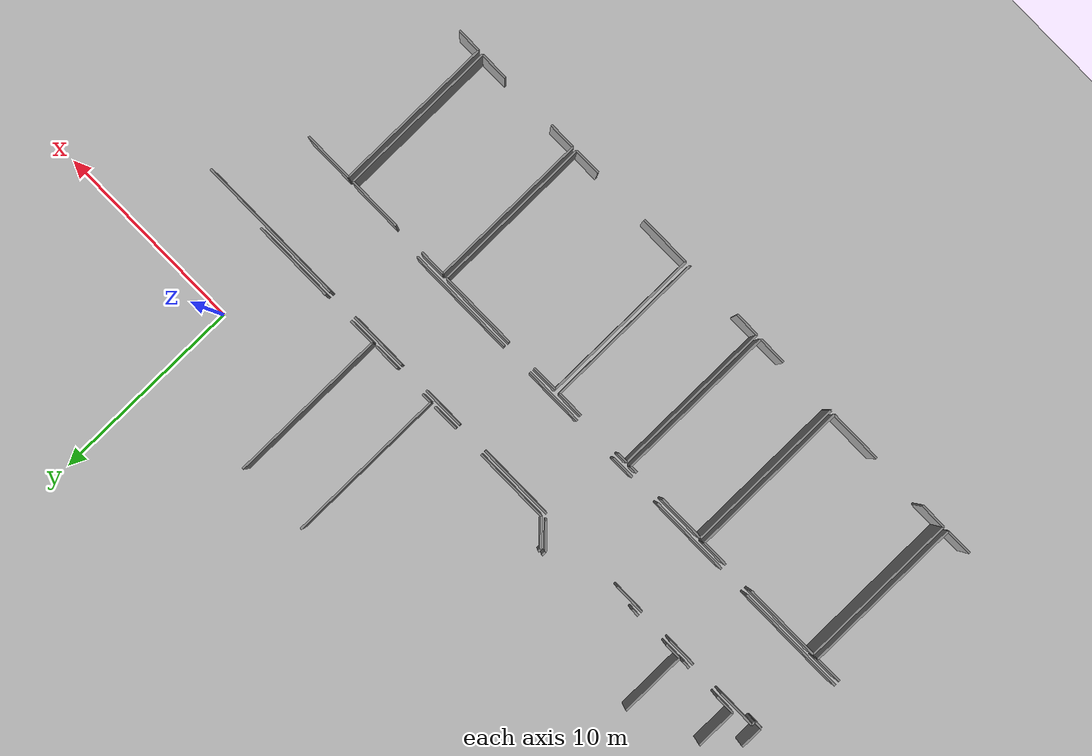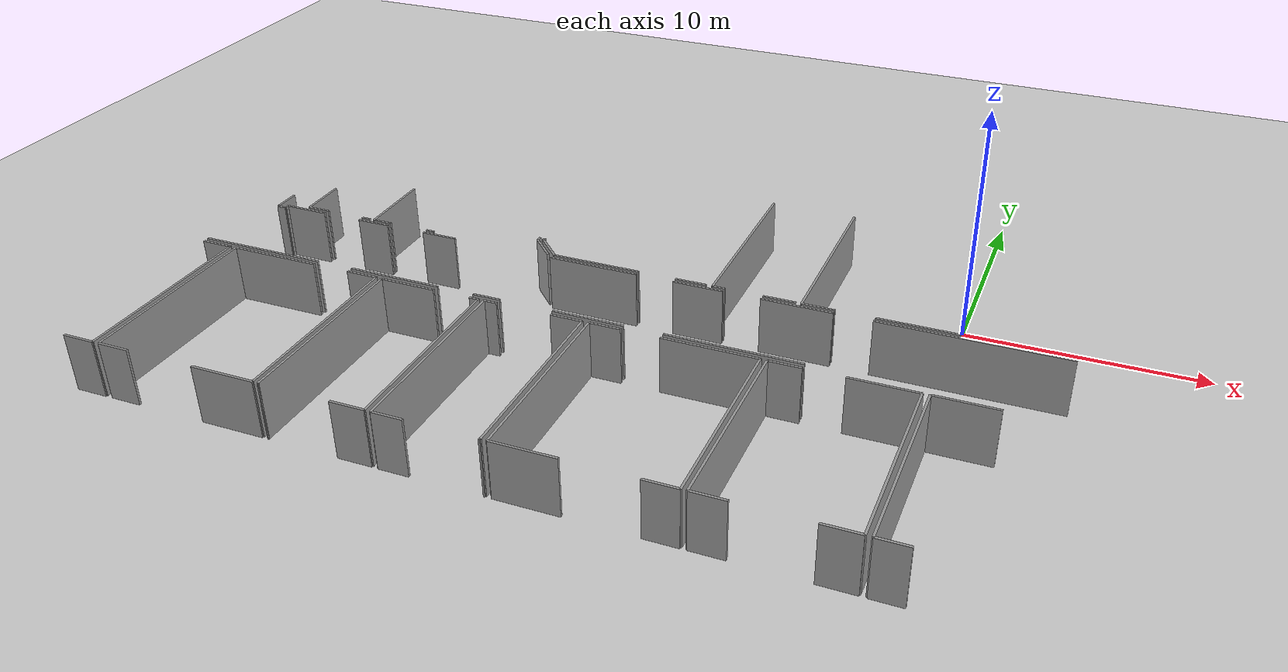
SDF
<sdf version="1.6">
 <world name="default">
  <model name="ground_plane">
   <static>1</static>
   <link name="link">
    <collision name="collision">
     <geometry><plane><normal>0 0 1</normal><size>100 100</size></plane></geometry>
     <surface><friction><ode><mu>100</mu><mu2>50</mu2></ode></friction></surface>
    </collision>
    <visual name="visual">
     <cast_shadows>0</cast_shadows>
     <geometry><plane><normal>0 0 1</normal><size>100 100</size></plane></geometry>
     <material>
      <script><uri>file://media/materials/scripts/gazebo.material</uri><name>Gazebo/Grey</name></script>
     </material>
    </visual>
   </link>
  </model>
  <model name="50041171">
   <static>1</static>
   <link name="Wall_96">
    <collision name="Wall_96_Collision">
     <geometry><box><size>5.64910788527 0.1 2.5</size></box></geometry>
     <pose>2.82455394263 0 1.25 0 0 0</pose>
    </collision>
    <visual name="Wall_96_Visual">
     <pose>2.82455394263 0 1.25 0 0 0</pose>
     <geometry><box><size>5.64910788527 0.1 2.5</size></box></geometry>
     <material>
      <script><uri>file://media/materials/scripts/gazebo.material</uri><name>Gazebo/Grey</name></script>
      <ambient>1 1 1 1</ambient>
     </material>
    </visual>
    <pose>61.1191580925 -25.0291024266 0 0 0 3.14159265359</pose>
   </link>
   <link name="Wall_97">
    <collision name="Wall_97_Collision">
     <geometry><box><size>3.0620703663 0.1 2.5</size></box></geometry>
     <pose>1.53103518315 0 1.25 0 0 0</pose>
    </collision>
    <visual name="Wall_97_Visual">
     <pose>1.53103518315 0 1.25 0 0 0</pose>
     <geometry><box><size>3.0620703663 0.1 2.5</size></box></geometry>
     <material>
      <script><uri>file://media/materials/scripts/gazebo.material</uri><name>Gazebo/Grey</name></script>
      <ambient>1 1 1 1</ambient>
     </material>
    </visual>
    <pose>53.8112436289 -25.0291024266 0 0 0 3.14159265359</pose>
   </link>
   <link name="Wall_98">
    <collision name="Wall_98_Collision">
     <geometry><box><size>1.21017854989 0.1 2.5</size></box></geometry>
     <pose>0.605089274947 0 1.25 0 0 0</pose>
    </collision>
    <visual name="Wall_98_Visual">
     <pose>0.605089274947 0 1.25 0 0 0</pose>
     <geometry><box><size>1.21017854989 0.1 2.5</size></box></geometry>
     <material>
      <script><uri>file://media/materials/scripts/gazebo.material</uri><name>Gazebo/Grey</name></script>
      <ambient>1 1 1 1</ambient>
     </material>
    </visual>
    <pose>48.4156473941 -25.0291024266 0 0 0 3.14159265359</pose>
   </link>
   <link name="Wall_99">
    <collision name="Wall_99_Collision">
     <geometry><box><size>4.12994217599 0.1 2.5</size></box></geometry>
     <pose>2.06497108799 0 1.25 0 0 0</pose>
    </collision>
    <visual name="Wall_99_Visual">
     <pose>2.06497108799 0 1.25 0 0 0</pose>
     <geometry><box><size>4.12994217599 0.1 2.5</size></box></geometry>
     <material>
      <script><uri>file://media/materials/scripts/gazebo.material</uri><name>Gazebo/Grey</name></script>
      <ambient>1 1 1 1</ambient>
     </material>
    </visual>
    <pose>45.5648155788 -25.0291024266 0 0 0 3.14159265359</pose>
   </link>
   <link name="Wall_100">
    <collision name="Wall_100_Collision">
     <geometry><box><size>5.67487797292 0.1 2.5</size></box></geometry>
     <pose>2.83743898646 0 1.25 0 0 0</pose>
    </collision>
    <visual name="Wall_100_Visual">
     <pose>2.83743898646 0 1.25 0 0 0</pose>
     <geometry><box><size>5.67487797292 0.1 2.5</size></box></geometry>
     <material>
      <script><uri>file://media/materials/scripts/gazebo.material</uri><name>Gazebo/Grey</name></script>
      <ambient>1 1 1 1</ambient>
     </material>
    </visual>
    <pose>39.7794943731 -25.0291024266 0 0 0 3.14159265359</pose>
   </link>
   <link name="Wall_107">
    <collision name="Wall_107_Collision">
     <geometry><box><size>0.410290262588 0.1 2.5</size></box></geometry>
     <pose>0.205145131294 0 1.25 0 0 0</pose>
    </collision>
    <visual name="Wall_107_Visual">
     <pose>0.205145131294 0 1.25 0 0 0</pose>
     <geometry><box><size>0.410290262588 0.1 2.5</size></box></geometry>
     <material>
      <script><uri>file://media/materials/scripts/gazebo.material</uri><name>Gazebo/Grey</name></script>
      <ambient>1 1 1 1</ambient>
     </material>
    </visual>
    <pose>35.0432569329 -21.2995487061 0 0 0 0.0</pose>
   </link>
   <link name="Wall_108">
    <collision name="Wall_108_Collision">
     <geometry><box><size>0.200321173999 0.1 2.5</size></box></geometry>
     <pose>0.100160586999 0 1.25 0 0 0</pose>
    </collision>
    <visual name="Wall_108_Visual">
     <pose>0.100160586999 0 1.25 0 0 0</pose>
     <geometry><box><size>0.200321173999 0.1 2.5</size></box></geometry>
     <material>
      <script><uri>file://media/materials/scripts/gazebo.material</uri><name>Gazebo/Grey</name></script>
      <ambient>1 1 1 1</ambient>
     </material>
    </visual>
    <pose>35.4535471954 -21.2995487061 0 0 0 1.57079632679</pose>
   </link>
   <link name="Wall_109">
    <collision name="Wall_109_Collision">
     <geometry><box><size>1.97769554482 0.1 2.5</size></box></geometry>
     <pose>0.988847772411 0 1.25 0 0 0</pose>
    </collision>
    <visual name="Wall_109_Visual">
     <pose>0.988847772411 0 1.25 0 0 0</pose>
     <geometry><box><size>1.97769554482 0.1 2.5</size></box></geometry>
     <material>
      <script><uri>file://media/materials/scripts/gazebo.material</uri><name>Gazebo/Grey</name></script>
      <ambient>1 1 1 1</ambient>
     </material>
    </visual>
    <pose>35.4535471954 -21.0992275321 0 0 0 0.0</pose>
   </link>
   <link name="Wall_110">
    <collision name="Wall_110_Collision">
     <geometry><box><size>1.48120878214 0.1 2.5</size></box></geometry>
     <pose>0.740604391071 0 1.25 0 0 0</pose>
    </collision>
    <visual name="Wall_110_Visual">
     <pose>0.740604391071 0 1.25 0 0 0</pose>
     <geometry><box><size>1.48120878214 0.1 2.5</size></box></geometry>
     <material>
      <script><uri>file://media/materials/scripts/gazebo.material</uri><name>Gazebo/Grey</name></script>
      <ambient>1 1 1 1</ambient>
     </material>
    </visual>
    <pose>39.2496207481 -21.0992275321 0 0 0 0.0</pose>
   </link>
   <link name="Wall_111">
    <collision name="Wall_111_Collision">
     <geometry><box><size>1.59342926238 0.1 2.5</size></box></geometry>
     <pose>0.796714631189 0 1.25 0 0 0</pose>
    </collision>
    <visual name="Wall_111_Visual">
     <pose>0.796714631189 0 1.25 0 0 0</pose>
     <geometry><box><size>1.59342926238 0.1 2.5</size></box></geometry>
     <material>
      <script><uri>file://media/materials/scripts/gazebo.material</uri><name>Gazebo/Grey</name></script>
      <ambient>1 1 1 1</ambient>
     </material>
    </visual>
    <pose>42.5324506338 -21.0992275321 0 0 0 0.0</pose>
   </link>
   <link name="Wall_112">
    <collision name="Wall_112_Collision">
     <geometry><box><size>3.97443302634 0.1 2.5</size></box></geometry>
     <pose>1.98721651317 0 1.25 0 0 0</pose>
    </collision>
    <visual name="Wall_112_Visual">
     <pose>1.98721651317 0 1.25 0 0 0</pose>
     <geometry><box><size>3.97443302634 0.1 2.5</size></box></geometry>
     <material>
      <script><uri>file://media/materials/scripts/gazebo.material</uri><name>Gazebo/Grey</name></script>
      <ambient>1 1 1 1</ambient>
     </material>
    </visual>
    <pose>48.7137171765 -21.0992275321 0 0 0 0.0</pose>
   </link>
   <link name="Wall_113">
    <collision name="Wall_113_Collision">
     <geometry><box><size>2.1808095362 0.1 2.5</size></box></geometry>
     <pose>1.0904047681 0 1.25 0 0 0</pose>
    </collision>
    <visual name="Wall_113_Visual">
     <pose>1.0904047681 0 1.25 0 0 0</pose>
     <geometry><box><size>2.1808095362 0.1 2.5</size></box></geometry>
     <material>
      <script><uri>file://media/materials/scripts/gazebo.material</uri><name>Gazebo/Grey</name></script>
      <ambient>1 1 1 1</ambient>
     </material>
    </visual>
    <pose>54.3148393813 -21.0992275321 0 0 0 0.0</pose>
   </link>
   <link name="Wall_114">
    <collision name="Wall_114_Collision">
     <geometry><box><size>3.02462122414 0.1 2.5</size></box></geometry>
     <pose>1.51231061207 0 1.25 0 0 0</pose>
    </collision>
    <visual name="Wall_114_Visual">
     <pose>1.51231061207 0 1.25 0 0 0</pose>
     <geometry><box><size>3.02462122414 0.1 2.5</size></box></geometry>
     <material>
      <script><uri>file://media/materials/scripts/gazebo.material</uri><name>Gazebo/Grey</name></script>
      <ambient>1 1 1 1</ambient>
     </material>
    </visual>
    <pose>58.0966949545 -21.0992275321 0 0 0 0.0</pose>
   </link>
   <link name="Wall_115">
    <collision name="Wall_115_Collision">
     <geometry><box><size>7.76288980431 0.1 2.5</size></box></geometry>
     <pose>3.88144490216 0 1.25 0 0 0</pose>
    </collision>
    <visual name="Wall_115_Visual">
     <pose>3.88144490216 0 1.25 0 0 0</pose>
     <geometry><box><size>7.76288980431 0.1 2.5</size></box></geometry>
     <material>
      <script><uri>file://media/materials/scripts/gazebo.material</uri><name>Gazebo/Grey</name></script>
      <ambient>1 1 1 1</ambient>
     </material>
    </visual>
    <pose>62.7313753991 -21.0992275321 0 0 0 0.0</pose>
   </link>
   <link name="Wall_128">
    <collision name="Wall_128_Collision">
     <geometry><box><size>1.13924106168 0.1 2.5</size></box></geometry>
     <pose>0.569620530839 0 1.25 0 0 0</pose>
    </collision>
    <visual name="Wall_128_Visual">
     <pose>0.569620530839 0 1.25 0 0 0</pose>
     <geometry><box><size>1.13924106168 0.1 2.5</size></box></geometry>
     <material>
      <script><uri>file://media/materials/scripts/gazebo.material</uri><name>Gazebo/Grey</name></script>
      <ambient>1 1 1 1</ambient>
     </material>
    </visual>
    <pose>35.0588713209 -20.1016839419 0 0 0 -1.5774822089</pose>
   </link>
   <link name="Wall_129">
    <collision name="Wall_129_Collision">
     <geometry><box><size>0.393406412055 0.1 2.5</size></box></geometry>
     <pose>0.196703206027 0 1.25 0 0 0</pose>
    </collision>
    <visual name="Wall_129_Visual">
     <pose>0.196703206027 0 1.25 0 0 0</pose>
     <geometry><box><size>0.393406412055 0.1 2.5</size></box></geometry>
     <material>
      <script><uri>file://media/materials/scripts/gazebo.material</uri><name>Gazebo/Grey</name></script>
      <ambient>1 1 1 1</ambient>
     </material>
    </visual>
    <pose>39.652802021 -20.8608224847 0 0 0 3.14159265359</pose>
   </link>
   <link name="Wall_130">
    <collision name="Wall_130_Collision">
     <geometry><box><size>1.01747415057 0.1 2.5</size></box></geometry>
     <pose>0.508737075285 0 1.25 0 0 0</pose>
    </collision>
    <visual name="Wall_130_Visual">
     <pose>0.508737075285 0 1.25 0 0 0</pose>
     <geometry><box><size>1.01747415057 0.1 2.5</size></box></geometry>
     <material>
      <script><uri>file://media/materials/scripts/gazebo.material</uri><name>Gazebo/Grey</name></script>
      <ambient>1 1 1 1</ambient>
     </material>
    </visual>
    <pose>37.4642487639 -20.8608224847 0 0 0 3.14159265359</pose>
   </link>
   <link name="Wall_131">
    <collision name="Wall_131_Collision">
     <geometry><box><size>2.0925818962 0.1 2.5</size></box></geometry>
     <pose>1.0462909481 0 1.25 0 0 0</pose>
    </collision>
    <visual name="Wall_131_Visual">
     <pose>1.0462909481 0 1.25 0 0 0</pose>
     <geometry><box><size>2.0925818962 0.1 2.5</size></box></geometry>
     <material>
      <script><uri>file://media/materials/scripts/gazebo.material</uri><name>Gazebo/Grey</name></script>
      <ambient>1 1 1 1</ambient>
     </material>
    </visual>
    <pose>36.4467746133 -20.8608224847 0 0 0 1.57079632679</pose>
   </link>
   <link name="Wall_136">
    <collision name="Wall_136_Collision">
     <geometry><box><size>0.384647121177 0.1 2.5</size></box></geometry>
     <pose>0.192323560588 0 1.25 0 0 0</pose>
    </collision>
    <visual name="Wall_136_Visual">
     <pose>0.192323560588 0 1.25 0 0 0</pose>
     <geometry><box><size>0.384647121177 0.1 2.5</size></box></geometry>
     <material>
      <script><uri>file://media/materials/scripts/gazebo.material</uri><name>Gazebo/Grey</name></script>
      <ambient>1 1 1 1</ambient>
     </material>
    </visual>
    <pose>42.9300462719 -20.8641230871 0 0 0 3.14159265359</pose>
   </link>
   <link name="Wall_137">
    <collision name="Wall_137_Collision">
     <geometry><box><size>0.861076377208 0.1 2.5</size></box></geometry>
     <pose>0.430538188604 0 1.25 0 0 0</pose>
    </collision>
    <visual name="Wall_137_Visual">
     <pose>0.430538188604 0 1.25 0 0 0</pose>
     <geometry><box><size>0.861076377208 0.1 2.5</size></box></geometry>
     <material>
      <script><uri>file://media/materials/scripts/gazebo.material</uri><name>Gazebo/Grey</name></script>
      <ambient>1 1 1 1</ambient>
     </material>
    </visual>
    <pose>40.7327337239 -20.8641230871 0 0 0 3.14159265359</pose>
   </link>
   <link name="Wall_138">
    <collision name="Wall_138_Collision">
     <geometry><box><size>3.38552939758 0.1 2.5</size></box></geometry>
     <pose>1.69276469879 0 1.25 0 0 0</pose>
    </collision>
    <visual name="Wall_138_Visual">
     <pose>1.69276469879 0 1.25 0 0 0</pose>
     <geometry><box><size>3.38552939758 0.1 2.5</size></box></geometry>
     <material>
      <script><uri>file://media/materials/scripts/gazebo.material</uri><name>Gazebo/Grey</name></script>
      <ambient>1 1 1 1</ambient>
     </material>
    </visual>
    <pose>39.8716573467 -20.8641230871 0 0 0 1.57079632679</pose>
   </link>
   <link name="Wall_146">
    <collision name="Wall_146_Collision">
     <geometry><box><size>1.44050423501 0.1 2.5</size></box></geometry>
     <pose>0.720252117505 0 1.25 0 0 0</pose>
    </collision>
    <visual name="Wall_146_Visual">
     <pose>0.720252117505 0 1.25 0 0 0</pose>
     <geometry><box><size>1.44050423501 0.1 2.5</size></box></geometry>
     <material>
      <script><uri>file://media/materials/scripts/gazebo.material</uri><name>Gazebo/Grey</name></script>
      <ambient>1 1 1 1</ambient>
     </material>
    </visual>
    <pose>48.5271061969 -20.9006836055 0 0 0 2.34765727628</pose>
   </link>
   <link name="Wall_147">
    <collision name="Wall_147_Collision">
     <geometry><box><size>0.226725992878 0.1 2.5</size></box></geometry>
     <pose>0.113362996439 0 1.25 0 0 0</pose>
    </collision>
    <visual name="Wall_147_Visual">
     <pose>0.113362996439 0 1.25 0 0 0</pose>
     <geometry><box><size>0.226725992878 0.1 2.5</size></box></geometry>
     <material>
      <script><uri>file://media/materials/scripts/gazebo.material</uri><name>Gazebo/Grey</name></script>
      <ambient>1 1 1 1</ambient>
     </material>
    </visual>
    <pose>47.517248821 -19.8734345941 0 0 0 1.57079632679</pose>
   </link>
   <link name="Wall_151">
    <collision name="Wall_151_Collision">
     <geometry><box><size>1.372669743 0.1 2.5</size></box></geometry>
     <pose>0.686334871499 0 1.25 0 0 0</pose>
    </collision>
    <visual name="Wall_151_Visual">
     <pose>0.686334871499 0 1.25 0 0 0</pose>
     <geometry><box><size>1.372669743 0.1 2.5</size></box></geometry>
     <material>
      <script><uri>file://media/materials/scripts/gazebo.material</uri><name>Gazebo/Grey</name></script>
      <ambient>1 1 1 1</ambient>
     </material>
    </visual>
    <pose>55.7022348886 -20.8608224847 0 0 0 3.14159265359</pose>
   </link>
   <link name="Wall_152">
    <collision name="Wall_152_Collision">
     <geometry><box><size>3.8963610859 0.1 2.5</size></box></geometry>
     <pose>1.94818054295 0 1.25 0 0 0</pose>
    </collision>
    <visual name="Wall_152_Visual">
     <pose>1.94818054295 0 1.25 0 0 0</pose>
     <geometry><box><size>3.8963610859 0.1 2.5</size></box></geometry>
     <material>
      <script><uri>file://media/materials/scripts/gazebo.material</uri><name>Gazebo/Grey</name></script>
      <ambient>1 1 1 1</ambient>
     </material>
    </visual>
    <pose>52.6977981174 -20.8608224847 0 0 0 3.14159265359</pose>
   </link>
   <link name="Wall_153">
    <collision name="Wall_153_Collision">
     <geometry><box><size>1.50161336496 0.1 2.5</size></box></geometry>
     <pose>0.75080668248 0 1.25 0 0 0</pose>
    </collision>
    <visual name="Wall_153_Visual">
     <pose>0.75080668248 0 1.25 0 0 0</pose>
     <geometry><box><size>1.50161336496 0.1 2.5</size></box></geometry>
     <material>
      <script><uri>file://media/materials/scripts/gazebo.material</uri><name>Gazebo/Grey</name></script>
      <ambient>1 1 1 1</ambient>
     </material>
    </visual>
    <pose>48.8014370315 -20.8608224847 0 0 0 2.34346127513</pose>
   </link>
   <link name="Wall_154">
    <collision name="Wall_154_Collision">
     <geometry><box><size>0.126184567145 0.1 2.5</size></box></geometry>
     <pose>0.0630922835725 0 1.25 0 0 0</pose>
    </collision>
    <visual name="Wall_154_Visual">
     <pose>0.0630922835725 0 1.25 0 0 0</pose>
     <geometry><box><size>0.126184567145 0.1 2.5</size></box></geometry>
     <material>
      <script><uri>file://media/materials/scripts/gazebo.material</uri><name>Gazebo/Grey</name></script>
      <ambient>1 1 1 1</ambient>
     </material>
    </visual>
    <pose>47.7532418897 -19.7855877928 0 0 0 1.57079632679</pose>
   </link>
   <link name="Wall_158">
    <collision name="Wall_158_Collision">
     <geometry><box><size>1.37914400147 0.1 2.5</size></box></geometry>
     <pose>0.689572000736 0 1.25 0 0 0</pose>
    </collision>
    <visual name="Wall_158_Visual">
     <pose>0.689572000736 0 1.25 0 0 0</pose>
     <geometry><box><size>1.37914400147 0.1 2.5</size></box></geometry>
     <material>
      <script><uri>file://media/materials/scripts/gazebo.material</uri><name>Gazebo/Grey</name></script>
      <ambient>1 1 1 1</ambient>
     </material>
    </visual>
    <pose>59.5078294096 -20.8641230871 0 0 0 3.14159265359</pose>
   </link>
   <link name="Wall_159">
    <collision name="Wall_159_Collision">
     <geometry><box><size>0.529873625013 0.1 2.5</size></box></geometry>
     <pose>0.264936812507 0 1.25 0 0 0</pose>
    </collision>
    <visual name="Wall_159_Visual">
     <pose>0.264936812507 0 1.25 0 0 0</pose>
     <geometry><box><size>0.529873625013 0.1 2.5</size></box></geometry>
     <material>
      <script><uri>file://media/materials/scripts/gazebo.material</uri><name>Gazebo/Grey</name></script>
      <ambient>1 1 1 1</ambient>
     </material>
    </visual>
    <pose>56.4961567024 -20.8641230871 0 0 0 3.14159265359</pose>
   </link>
   <link name="Wall_160">
    <collision name="Wall_160_Collision">
     <geometry><box><size>8.17635372302 0.1 2.5</size></box></geometry>
     <pose>4.08817686151 0 1.25 0 0 0</pose>
    </collision>
    <visual name="Wall_160_Visual">
     <pose>4.08817686151 0 1.25 0 0 0</pose>
     <geometry><box><size>8.17635372302 0.1 2.5</size></box></geometry>
     <material>
      <script><uri>file://media/materials/scripts/gazebo.material</uri><name>Gazebo/Grey</name></script>
      <ambient>1 1 1 1</ambient>
     </material>
    </visual>
    <pose>55.9662830774 -20.8641230871 0 0 0 1.57079632679</pose>
   </link>
   <link name="Wall_163">
    <collision name="Wall_163_Collision">
     <geometry><box><size>4.2215973646 0.1 2.5</size></box></geometry>
     <pose>2.1107986823 0 1.25 0 0 0</pose>
    </collision>
    <visual name="Wall_163_Visual">
     <pose>2.1107986823 0 1.25 0 0 0</pose>
     <geometry><box><size>4.2215973646 0.1 2.5</size></box></geometry>
     <material>
      <script><uri>file://media/materials/scripts/gazebo.material</uri><name>Gazebo/Grey</name></script>
      <ambient>1 1 1 1</ambient>
     </material>
    </visual>
    <pose>66.9810278837 -20.8608224847 0 0 0 3.14159265359</pose>
   </link>
   <link name="Wall_164">
    <collision name="Wall_164_Collision">
     <geometry><box><size>1.3797787327 0.1 2.5</size></box></geometry>
     <pose>0.689889366348 0 1.25 0 0 0</pose>
    </collision>
    <visual name="Wall_164_Visual">
     <pose>0.689889366348 0 1.25 0 0 0</pose>
     <geometry><box><size>1.3797787327 0.1 2.5</size></box></geometry>
     <material>
      <script><uri>file://media/materials/scripts/gazebo.material</uri><name>Gazebo/Grey</name></script>
      <ambient>1 1 1 1</ambient>
     </material>
    </visual>
    <pose>61.1213161787 -20.8608224847 0 0 0 3.14159265359</pose>
   </link>
   <link name="Wall_165">
    <collision name="Wall_165_Collision">
     <geometry><box><size>8.16213574362 0.1 2.5</size></box></geometry>
     <pose>4.08106787181 0 1.25 0 0 0</pose>
    </collision>
    <visual name="Wall_165_Visual">
     <pose>4.08106787181 0 1.25 0 0 0</pose>
     <geometry><box><size>8.16213574362 0.1 2.5</size></box></geometry>
     <material>
      <script><uri>file://media/materials/scripts/gazebo.material</uri><name>Gazebo/Grey</name></script>
      <ambient>1 1 1 1</ambient>
     </material>
    </visual>
    <pose>59.741537446 -20.8608224847 0 0 0 1.57079632679</pose>
   </link>
   <link name="Wall_326">
    <collision name="Wall_326_Collision">
     <geometry><box><size>1.3689883019 0.1 2.5</size></box></geometry>
     <pose>0.684494150952 0 1.25 0 0 0</pose>
    </collision>
    <visual name="Wall_326_Visual">
     <pose>0.684494150952 0 1.25 0 0 0</pose>
     <geometry><box><size>1.3689883019 0.1 2.5</size></box></geometry>
     <material>
      <script><uri>file://media/materials/scripts/gazebo.material</uri><name>Gazebo/Grey</name></script>
      <ambient>1 1 1 1</ambient>
     </material>
    </visual>
    <pose>35.5031831771 -33.5402133966 0 0 0 3.14159265359</pose>
   </link>
   <link name="Wall_330">
    <collision name="Wall_330_Collision">
     <geometry><box><size>1.37914400147 0.1 2.5</size></box></geometry>
     <pose>0.689572000736 0 1.25 0 0 0</pose>
    </collision>
    <visual name="Wall_330_Visual">
     <pose>0.689572000736 0 1.25 0 0 0</pose>
     <geometry><box><size>1.37914400147 0.1 2.5</size></box></geometry>
     <material>
      <script><uri>file://media/materials/scripts/gazebo.material</uri><name>Gazebo/Grey</name></script>
      <ambient>1 1 1 1</ambient>
     </material>
    </visual>
    <pose>34.1185804871 -25.2988631964 0 0 0 0.0</pose>
   </link>
   <link name="Wall_331">
    <collision name="Wall_331_Collision">
     <geometry><box><size>8.24135200805 0.1 2.5</size></box></geometry>
     <pose>4.12067600402 0 1.25 0 0 0</pose>
    </collision>
    <visual name="Wall_331_Visual">
     <pose>4.12067600402 0 1.25 0 0 0</pose>
     <geometry><box><size>8.24135200805 0.1 2.5</size></box></geometry>
     <material>
      <script><uri>file://media/materials/scripts/gazebo.material</uri><name>Gazebo/Grey</name></script>
      <ambient>1 1 1 1</ambient>
     </material>
    </visual>
    <pose>35.4977244886 -25.2988631964 0 0 0 -1.57013397323</pose>
   </link>
   <link name="Wall_332">
    <collision name="Wall_332_Collision">
     <geometry><box><size>2.73442210896 0.1 2.5</size></box></geometry>
     <pose>1.36721105448 0 1.25 0 0 0</pose>
    </collision>
    <visual name="Wall_332_Visual">
     <pose>1.36721105448 0 1.25 0 0 0</pose>
     <geometry><box><size>2.73442210896 0.1 2.5</size></box></geometry>
     <material>
      <script><uri>file://media/materials/scripts/gazebo.material</uri><name>Gazebo/Grey</name></script>
      <ambient>1 1 1 1</ambient>
     </material>
    </visual>
    <pose>42.8410569544 -33.5290421271 0 0 0 3.14159265359</pose>
   </link>
   <link name="Wall_333">
    <collision name="Wall_333_Collision">
     <geometry><box><size>1.34271042927 0.1 2.5</size></box></geometry>
     <pose>0.671355214634 0 1.25 0 0 0</pose>
    </collision>
    <visual name="Wall_333_Visual">
     <pose>0.671355214634 0 1.25 0 0 0</pose>
     <geometry><box><size>1.34271042927 0.1 2.5</size></box></geometry>
     <material>
      <script><uri>file://media/materials/scripts/gazebo.material</uri><name>Gazebo/Grey</name></script>
      <ambient>1 1 1 1</ambient>
     </material>
    </visual>
    <pose>37.1307609793 -33.5290421271 0 0 0 3.14159265359</pose>
   </link>
   <link name="Wall_334">
    <collision name="Wall_334_Collision">
     <geometry><box><size>8.23347953309 0.1 2.5</size></box></geometry>
     <pose>4.11673976655 0 1.25 0 0 0</pose>
    </collision>
    <visual name="Wall_334_Visual">
     <pose>4.11673976655 0 1.25 0 0 0</pose>
     <geometry><box><size>8.23347953309 0.1 2.5</size></box></geometry>
     <material>
      <script><uri>file://media/materials/scripts/gazebo.material</uri><name>Gazebo/Grey</name></script>
      <ambient>1 1 1 1</ambient>
     </material>
    </visual>
    <pose>35.78805055 -33.5290421271 0 0 0 1.57079632679</pose>
   </link>
   <link name="Wall_335">
    <collision name="Wall_335_Collision">
     <geometry><box><size>3.98039949983 0.1 2.5</size></box></geometry>
     <pose>1.99019974992 0 1.25 0 0 0</pose>
    </collision>
    <visual name="Wall_335_Visual">
     <pose>1.99019974992 0 1.25 0 0 0</pose>
     <geometry><box><size>3.98039949983 0.1 2.5</size></box></geometry>
     <material>
      <script><uri>file://media/materials/scripts/gazebo.material</uri><name>Gazebo/Grey</name></script>
      <ambient>1 1 1 1</ambient>
     </material>
    </visual>
    <pose>35.78805055 -25.295562594 0 0 0 0.0</pose>
   </link>
   <link name="Wall_336">
    <collision name="Wall_336_Collision">
     <geometry><box><size>1.3772398078 0.1 2.5</size></box></geometry>
     <pose>0.688619903902 0 1.25 0 0 0</pose>
    </collision>
    <visual name="Wall_336_Visual">
     <pose>0.688619903902 0 1.25 0 0 0</pose>
     <geometry><box><size>1.3772398078 0.1 2.5</size></box></geometry>
     <material>
      <script><uri>file://media/materials/scripts/gazebo.material</uri><name>Gazebo/Grey</name></script>
      <ambient>1 1 1 1</ambient>
     </material>
    </visual>
    <pose>41.4211632084 -25.295562594 0 0 0 0.0</pose>
   </link>
   <link name="Wall_337">
    <collision name="Wall_337_Collision">
     <geometry><box><size>8.23359001774 0.1 2.5</size></box></geometry>
     <pose>4.11679500887 0 1.25 0 0 0</pose>
    </collision>
    <visual name="Wall_337_Visual">
     <pose>4.11679500887 0 1.25 0 0 0</pose>
     <geometry><box><size>8.23359001774 0.1 2.5</size></box></geometry>
     <material>
      <script><uri>file://media/materials/scripts/gazebo.material</uri><name>Gazebo/Grey</name></script>
      <ambient>1 1 1 1</ambient>
     </material>
    </visual>
    <pose>42.7984030162 -25.295562594 0 0 0 -1.56561582486</pose>
   </link>
   <link name="Wall_338">
    <collision name="Wall_338_Collision">
     <geometry><box><size>1.4645788241 0.1 2.5</size></box></geometry>
     <pose>0.732289412048 0 1.25 0 0 0</pose>
    </collision>
    <visual name="Wall_338_Visual">
     <pose>0.732289412048 0 1.25 0 0 0</pose>
     <geometry><box><size>1.4645788241 0.1 2.5</size></box></geometry>
     <material>
      <script><uri>file://media/materials/scripts/gazebo.material</uri><name>Gazebo/Grey</name></script>
      <ambient>1 1 1 1</ambient>
     </material>
    </visual>
    <pose>47.5970980088 -33.5513846662 0 0 0 3.14159265359</pose>
   </link>
   <link name="Wall_339">
    <collision name="Wall_339_Collision">
     <geometry><box><size>0.0441772931252 0.1 2.5</size></box></geometry>
     <pose>0.0220886465626 0 1.25 0 0 0</pose>
    </collision>
    <visual name="Wall_339_Visual">
     <pose>0.0220886465626 0 1.25 0 0 0</pose>
     <geometry><box><size>0.0441772931252 0.1 2.5</size></box></geometry>
     <material>
      <script><uri>file://media/materials/scripts/gazebo.material</uri><name>Gazebo/Grey</name></script>
      <ambient>1 1 1 1</ambient>
     </material>
    </visual>
    <pose>43.1282093597 -33.5513846662 0 0 0 3.14159265359</pose>
   </link>
   <link name="Wall_340">
    <collision name="Wall_340_Collision">
     <geometry><box><size>8.23005198449 0.1 2.5</size></box></geometry>
     <pose>4.11502599224 0 1.25 0 0 0</pose>
    </collision>
    <visual name="Wall_340_Visual">
     <pose>4.11502599224 0 1.25 0 0 0</pose>
     <geometry><box><size>8.23005198449 0.1 2.5</size></box></geometry>
     <material>
      <script><uri>file://media/materials/scripts/gazebo.material</uri><name>Gazebo/Grey</name></script>
      <ambient>1 1 1 1</ambient>
     </material>
    </visual>
    <pose>43.0840320666 -33.5513846662 0 0 0 1.57079632679</pose>
   </link>
   <link name="Wall_341">
    <collision name="Wall_341_Collision">
     <geometry><box><size>2.45691761823 0.1 2.5</size></box></geometry>
     <pose>1.22845880912 0 1.25 0 0 0</pose>
    </collision>
    <visual name="Wall_341_Visual">
     <pose>1.22845880912 0 1.25 0 0 0</pose>
     <geometry><box><size>2.45691761823 0.1 2.5</size></box></geometry>
     <material>
      <script><uri>file://media/materials/scripts/gazebo.material</uri><name>Gazebo/Grey</name></script>
      <ambient>1 1 1 1</ambient>
     </material>
    </visual>
    <pose>43.0840320666 -25.3213326817 0 0 0 0.0</pose>
   </link>
   <link name="Wall_342">
    <collision name="Wall_342_Collision">
     <geometry><box><size>0.391248325896 0.1 2.5</size></box></geometry>
     <pose>0.195624162948 0 1.25 0 0 0</pose>
    </collision>
    <visual name="Wall_342_Visual">
     <pose>0.195624162948 0 1.25 0 0 0</pose>
     <geometry><box><size>0.391248325896 0.1 2.5</size></box></geometry>
     <material>
      <script><uri>file://media/materials/scripts/gazebo.material</uri><name>Gazebo/Grey</name></script>
      <ambient>1 1 1 1</ambient>
     </material>
    </visual>
    <pose>47.192901166 -25.3213326817 0 0 0 0.0</pose>
   </link>
   <link name="Wall_343">
    <collision name="Wall_343_Collision">
     <geometry><box><size>8.23006217057 0.1 2.5</size></box></geometry>
     <pose>4.11503108529 0 1.25 0 0 0</pose>
    </collision>
    <visual name="Wall_343_Visual">
     <pose>4.11503108529 0 1.25 0 0 0</pose>
     <geometry><box><size>8.23006217057 0.1 2.5</size></box></geometry>
     <material>
      <script><uri>file://media/materials/scripts/gazebo.material</uri><name>Gazebo/Grey</name></script>
      <ambient>1 1 1 1</ambient>
     </material>
    </visual>
    <pose>47.5841494919 -25.3213326817 0 0 0 -1.56922300669</pose>
   </link>
   <link name="Wall_344">
    <collision name="Wall_344_Collision">
     <geometry><box><size>0.0672815096447 0.1 2.5</size></box></geometry>
     <pose>0.0336407548224 0 1.25 0 0 0</pose>
    </collision>
    <visual name="Wall_344_Visual">
     <pose>0.0336407548224 0 1.25 0 0 0</pose>
     <geometry><box><size>0.0672815096447 0.1 2.5</size></box></geometry>
     <material>
      <script><uri>file://media/materials/scripts/gazebo.material</uri><name>Gazebo/Grey</name></script>
      <ambient>1 1 1 1</ambient>
     </material>
    </visual>
    <pose>52.2082933982 -33.5602709033 0 0 0 3.14159265359</pose>
   </link>
   <link name="Wall_345">
    <collision name="Wall_345_Collision">
     <geometry><box><size>1.28977384527 0.1 2.5</size></box></geometry>
     <pose>0.644886922633 0 1.25 0 0 0</pose>
    </collision>
    <visual name="Wall_345_Visual">
     <pose>0.644886922633 0 1.25 0 0 0</pose>
     <geometry><box><size>1.28977384527 0.1 2.5</size></box></geometry>
     <material>
      <script><uri>file://media/materials/scripts/gazebo.material</uri><name>Gazebo/Grey</name></script>
      <ambient>1 1 1 1</ambient>
     </material>
    </visual>
    <pose>49.1417799133 -33.5602709033 0 0 0 3.14159265359</pose>
   </link>
   <link name="Wall_346">
    <collision name="Wall_346_Collision">
     <geometry><box><size>8.24376217891 0.1 2.5</size></box></geometry>
     <pose>4.12188108945 0 1.25 0 0 0</pose>
    </collision>
    <visual name="Wall_346_Visual">
     <pose>4.12188108945 0 1.25 0 0 0</pose>
     <geometry><box><size>8.24376217891 0.1 2.5</size></box></geometry>
     <material>
      <script><uri>file://media/materials/scripts/gazebo.material</uri><name>Gazebo/Grey</name></script>
      <ambient>1 1 1 1</ambient>
     </material>
    </visual>
    <pose>47.852006068 -33.5602709033 0 0 0 1.57079632679</pose>
   </link>
   <link name="Wall_347">
    <collision name="Wall_347_Collision">
     <geometry><box><size>0.566688035951 0.1 2.5</size></box></geometry>
     <pose>0.283344017976 0 1.25 0 0 0</pose>
    </collision>
    <visual name="Wall_347_Visual">
     <pose>0.283344017976 0 1.25 0 0 0</pose>
     <geometry><box><size>0.566688035951 0.1 2.5</size></box></geometry>
     <material>
      <script><uri>file://media/materials/scripts/gazebo.material</uri><name>Gazebo/Grey</name></script>
      <ambient>1 1 1 1</ambient>
     </material>
    </visual>
    <pose>47.852006068 -25.3165087244 0 0 0 0.0</pose>
   </link>
   <link name="Wall_348">
    <collision name="Wall_348_Collision">
     <geometry><box><size>1.38231765759 0.1 2.5</size></box></geometry>
     <pose>0.691158828794 0 1.25 0 0 0</pose>
    </collision>
    <visual name="Wall_348_Visual">
     <pose>0.691158828794 0 1.25 0 0 0</pose>
     <geometry><box><size>1.38231765759 0.1 2.5</size></box></geometry>
     <material>
      <script><uri>file://media/materials/scripts/gazebo.material</uri><name>Gazebo/Grey</name></script>
      <ambient>1 1 1 1</ambient>
     </material>
    </visual>
    <pose>50.797158943 -25.3165087244 0 0 0 0.0</pose>
   </link>
   <link name="Wall_349">
    <collision name="Wall_349_Collision">
     <geometry><box><size>8.24381254458 0.1 2.5</size></box></geometry>
     <pose>4.12190627229 0 1.25 0 0 0</pose>
    </collision>
    <visual name="Wall_349_Visual">
     <pose>4.12190627229 0 1.25 0 0 0</pose>
     <geometry><box><size>8.24381254458 0.1 2.5</size></box></geometry>
     <material>
      <script><uri>file://media/materials/scripts/gazebo.material</uri><name>Gazebo/Grey</name></script>
      <ambient>1 1 1 1</ambient>
     </material>
    </visual>
    <pose>52.1794766006 -25.3165087244 0 0 0 -1.56730075287</pose>
   </link>
   <link name="Wall_350">
    <collision name="Wall_350_Collision">
     <geometry><box><size>1.39386976585 0.1 2.5</size></box></geometry>
     <pose>0.696934882924 0 1.25 0 0 0</pose>
    </collision>
    <visual name="Wall_350_Visual">
     <pose>0.696934882924 0 1.25 0 0 0</pose>
     <geometry><box><size>1.39386976585 0.1 2.5</size></box></geometry>
     <material>
      <script><uri>file://media/materials/scripts/gazebo.material</uri><name>Gazebo/Grey</name></script>
      <ambient>1 1 1 1</ambient>
     </material>
    </visual>
    <pose>59.5172234317 -33.5485918488 0 0 0 3.14159265359</pose>
   </link>
   <link name="Wall_351">
    <collision name="Wall_351_Collision">
     <geometry><box><size>2.68377055736 0.1 2.5</size></box></geometry>
     <pose>1.34188527868 0 1.25 0 0 0</pose>
    </collision>
    <visual name="Wall_351_Visual">
     <pose>1.34188527868 0 1.25 0 0 0</pose>
     <geometry><box><size>2.68377055736 0.1 2.5</size></box></geometry>
     <material>
      <script><uri>file://media/materials/scripts/gazebo.material</uri><name>Gazebo/Grey</name></script>
      <ambient>1 1 1 1</ambient>
     </material>
    </visual>
    <pose>55.1458294985 -33.5485918488 0 0 0 3.14159265359</pose>
   </link>
   <link name="Wall_352">
    <collision name="Wall_352_Collision">
     <geometry><box><size>8.24249271646 0.1 2.5</size></box></geometry>
     <pose>4.12124635823 0 1.25 0 0 0</pose>
    </collision>
    <visual name="Wall_352_Visual">
     <pose>4.12124635823 0 1.25 0 0 0</pose>
     <geometry><box><size>8.24249271646 0.1 2.5</size></box></geometry>
     <material>
      <script><uri>file://media/materials/scripts/gazebo.material</uri><name>Gazebo/Grey</name></script>
      <ambient>1 1 1 1</ambient>
     </material>
    </visual>
    <pose>52.4620589411 -33.5485918488 0 0 0 1.57079632679</pose>
   </link>
   <link name="Wall_353">
    <collision name="Wall_353_Collision">
     <geometry><box><size>1.3502002577 0.1 2.5</size></box></geometry>
     <pose>0.67510012885 0 1.25 0 0 0</pose>
    </collision>
    <visual name="Wall_353_Visual">
     <pose>0.67510012885 0 1.25 0 0 0</pose>
     <geometry><box><size>1.3502002577 0.1 2.5</size></box></geometry>
     <material>
      <script><uri>file://media/materials/scripts/gazebo.material</uri><name>Gazebo/Grey</name></script>
      <ambient>1 1 1 1</ambient>
     </material>
    </visual>
    <pose>52.4620589411 -25.3060991323 0 0 0 0.0</pose>
   </link>
   <link name="Wall_354">
    <collision name="Wall_354_Collision">
     <geometry><box><size>4.03942950358 0.1 2.5</size></box></geometry>
     <pose>2.01971475179 0 1.25 0 0 0</pose>
    </collision>
    <visual name="Wall_354_Visual">
     <pose>2.01971475179 0 1.25 0 0 0</pose>
     <geometry><box><size>4.03942950358 0.1 2.5</size></box></geometry>
     <material>
      <script><uri>file://media/materials/scripts/gazebo.material</uri><name>Gazebo/Grey</name></script>
      <ambient>1 1 1 1</ambient>
     </material>
    </visual>
    <pose>55.4482154532 -25.3060991323 0 0 0 0.0</pose>
   </link>
   <link name="Wall_355">
    <collision name="Wall_355_Collision">
     <geometry><box><size>8.24254578799 0.1 2.5</size></box></geometry>
     <pose>4.12127289399 0 1.25 0 0 0</pose>
    </collision>
    <visual name="Wall_355_Visual">
     <pose>4.12127289399 0 1.25 0 0 0</pose>
     <geometry><box><size>8.24254578799 0.1 2.5</size></box></geometry>
     <material>
      <script><uri>file://media/materials/scripts/gazebo.material</uri><name>Gazebo/Grey</name></script>
      <ambient>1 1 1 1</ambient>
     </material>
    </visual>
    <pose>59.4876449567 -25.3060991323 0 0 0 -1.56720780703</pose>
   </link>
   <link name="Wall_356">
    <collision name="Wall_356_Collision">
     <geometry><box><size>1.48184351336 0.1 2.5</size></box></geometry>
     <pose>0.740921756682 0 1.25 0 0 0</pose>
    </collision>
    <visual name="Wall_356_Visual">
     <pose>0.740921756682 0 1.25 0 0 0</pose>
     <geometry><box><size>1.48184351336 0.1 2.5</size></box></geometry>
     <material>
      <script><uri>file://media/materials/scripts/gazebo.material</uri><name>Gazebo/Grey</name></script>
      <ambient>1 1 1 1</ambient>
     </material>
    </visual>
    <pose>65.6119126356 -33.5369127943 0 0 0 3.14159265359</pose>
   </link>
   <link name="Wall_357">
    <collision name="Wall_357_Collision">
     <geometry><box><size>1.39399671209 0.1 2.5</size></box></geometry>
     <pose>0.696998356046 0 1.25 0 0 0</pose>
    </collision>
    <visual name="Wall_357_Visual">
     <pose>0.696998356046 0 1.25 0 0 0</pose>
     <geometry><box><size>1.39399671209 0.1 2.5</size></box></geometry>
     <material>
      <script><uri>file://media/materials/scripts/gazebo.material</uri><name>Gazebo/Grey</name></script>
      <ambient>1 1 1 1</ambient>
     </material>
    </visual>
    <pose>61.1445473414 -33.5369127943 0 0 0 3.14159265359</pose>
   </link>
   <link name="Wall_358">
    <collision name="Wall_358_Collision">
     <geometry><box><size>8.2204040699 0.1 2.5</size></box></geometry>
     <pose>4.11020203495 0 1.25 0 0 0</pose>
    </collision>
    <visual name="Wall_358_Visual">
     <pose>4.11020203495 0 1.25 0 0 0</pose>
     <geometry><box><size>8.2204040699 0.1 2.5</size></box></geometry>
     <material>
      <script><uri>file://media/materials/scripts/gazebo.material</uri><name>Gazebo/Grey</name></script>
      <ambient>1 1 1 1</ambient>
     </material>
    </visual>
    <pose>59.7505506293 -33.5369127943 0 0 0 1.57079632679</pose>
   </link>
   <link name="Wall_359">
    <collision name="Wall_359_Collision">
     <geometry><box><size>1.36746494697 0.1 2.5</size></box></geometry>
     <pose>0.683732473484 0 1.25 0 0 0</pose>
    </collision>
    <visual name="Wall_359_Visual">
     <pose>0.683732473484 0 1.25 0 0 0</pose>
     <geometry><box><size>1.36746494697 0.1 2.5</size></box></geometry>
     <material>
      <script><uri>file://media/materials/scripts/gazebo.material</uri><name>Gazebo/Grey</name></script>
      <ambient>1 1 1 1</ambient>
     </material>
    </visual>
    <pose>59.7505506293 -25.3165087244 0 0 0 0.0</pose>
   </link>
   <link name="Wall_360">
    <collision name="Wall_360_Collision">
     <geometry><box><size>2.80855871581 0.1 2.5</size></box></geometry>
     <pose>1.40427935791 0 1.25 0 0 0</pose>
    </collision>
    <visual name="Wall_360_Visual">
     <pose>1.40427935791 0 1.25 0 0 0</pose>
     <geometry><box><size>2.80855871581 0.1 2.5</size></box></geometry>
     <material>
      <script><uri>file://media/materials/scripts/gazebo.material</uri><name>Gazebo/Grey</name></script>
      <ambient>1 1 1 1</ambient>
     </material>
    </visual>
    <pose>62.7759335309 -25.3165087244 0 0 0 0.0</pose>
   </link>
   <link name="Wall_361">
    <collision name="Wall_361_Collision">
     <geometry><box><size>8.22044980218 0.1 2.5</size></box></geometry>
     <pose>4.11022490109 0 1.25 0 0 0</pose>
    </collision>
    <visual name="Wall_361_Visual">
     <pose>4.11022490109 0 1.25 0 0 0</pose>
     <geometry><box><size>8.22044980218 0.1 2.5</size></box></geometry>
     <material>
      <script><uri>file://media/materials/scripts/gazebo.material</uri><name>Gazebo/Grey</name></script>
      <ambient>1 1 1 1</ambient>
     </material>
    </visual>
    <pose>65.5844922468 -25.3165087244 0 0 0 -1.56746068941</pose>
   </link>
   <link name="Wall_363">
    <collision name="Wall_363_Collision">
     <geometry><box><size>1.25042050944 0.1 2.5</size></box></geometry>
     <pose>0.625210254718 0 1.25 0 0 0</pose>
    </collision>
    <visual name="Wall_363_Visual">
     <pose>0.625210254718 0 1.25 0 0 0</pose>
     <geometry><box><size>1.25042050944 0.1 2.5</size></box></geometry>
     <material>
      <script><uri>file://media/materials/scripts/gazebo.material</uri><name>Gazebo/Grey</name></script>
      <ambient>1 1 1 1</ambient>
     </material>
    </visual>
    <pose>67.1216843228 -33.5446565152 0 0 0 3.14159265359</pose>
   </link>
   <link name="Wall_364">
    <collision name="Wall_364_Collision">
     <geometry><box><size>8.24198493148 0.1 2.5</size></box></geometry>
     <pose>4.12099246574 0 1.25 0 0 0</pose>
    </collision>
    <visual name="Wall_364_Visual">
     <pose>4.12099246574 0 1.25 0 0 0</pose>
     <geometry><box><size>8.24198493148 0.1 2.5</size></box></geometry>
     <material>
      <script><uri>file://media/materials/scripts/gazebo.material</uri><name>Gazebo/Grey</name></script>
      <ambient>1 1 1 1</ambient>
     </material>
    </visual>
    <pose>65.8712638133 -33.5446565152 0 0 0 1.57079632679</pose>
   </link>
   <link name="Wall_365">
    <collision name="Wall_365_Collision">
     <geometry><box><size>2.57865906682 0.1 2.5</size></box></geometry>
     <pose>1.28932953341 0 1.25 0 0 0</pose>
    </collision>
    <visual name="Wall_365_Visual">
     <pose>1.28932953341 0 1.25 0 0 0</pose>
     <geometry><box><size>2.57865906682 0.1 2.5</size></box></geometry>
     <material>
      <script><uri>file://media/materials/scripts/gazebo.material</uri><name>Gazebo/Grey</name></script>
      <ambient>1 1 1 1</ambient>
     </material>
    </visual>
    <pose>65.8712638133 -25.3026715837 0 0 0 0.0</pose>
   </link>
   <pose>-65.65 16.7602709033 0 0 0 0</pose>
  </model>
 </world>
</sdf>
